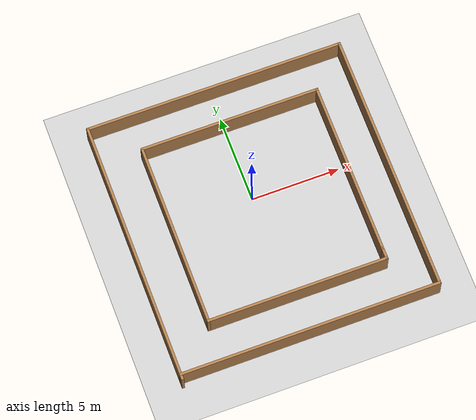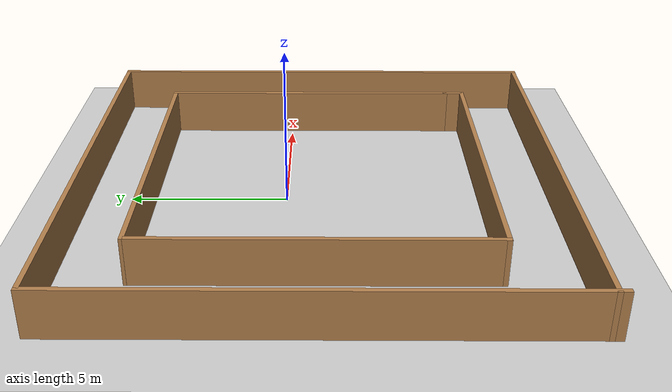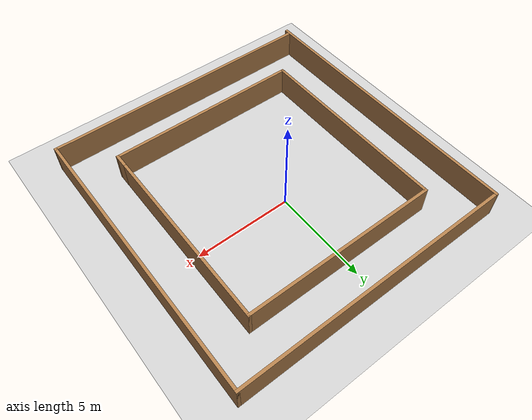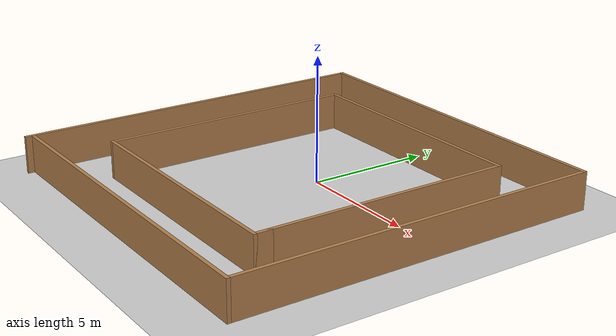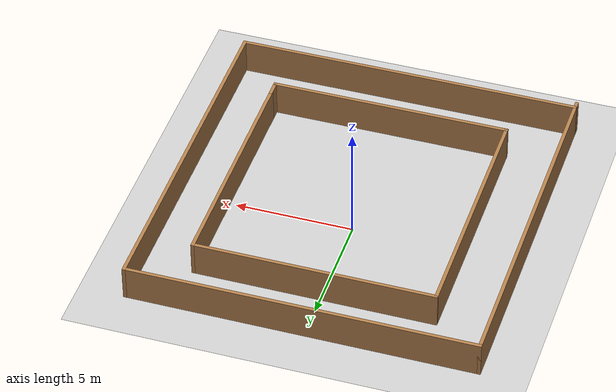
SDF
<sdf version="1.7">
 <world name="default">
  <light name="sun" type="directional">
   <pose>0 0 10 0 -0 0</pose>
   <diffuse>0.8 0.8 0.8 1</diffuse>
   <specular>0.2 0.2 0.2 1</specular>
   <attenuation>
    <range>1000</range>
    <constant>0.9</constant>
    <linear>0.01</linear>
    <quadratic>0.001</quadratic>
   </attenuation>
   <direction>-0.5 0.1 -0.9</direction>
   <spot><inner_angle>0</inner_angle><outer_angle>0</outer_angle><falloff>0</falloff></spot>
  </light>
  <model name="ground_plane">
   <static>1</static>
   <link name="link">
    <collision name="collision">
     <geometry><plane><normal>0 0 1</normal><size>100 100</size></plane></geometry>
     <surface><friction><ode><mu>100</mu><mu2>50</mu2></ode></friction></surface>
    </collision>
    <visual name="visual">
     <cast_shadows>0</cast_shadows>
     <geometry><plane><normal>0 0 1</normal><size>100 100</size></plane></geometry>
     <material>
      <script><uri>file://media/materials/scripts/gazebo.material</uri><name>Gazebo/Grey</name></script>
     </material>
    </visual>
   </link>
  </model>
  <gravity>0 0 -9.8</gravity>
  <magnetic_field>6e-06 2.3e-05 -4.2e-05</magnetic_field>
  <atmosphere type="adiabatic"/>
  <physics type="ode">
   <max_step_size>0.001</max_step_size>
   <real_time_factor>1</real_time_factor>
   <real_time_update_rate>1000</real_time_update_rate>
  </physics>
  <scene><ambient>0.4 0.4 0.4 1</ambient><background>0.7 0.7 0.7 1</background><shadows>1</shadows></scene>
  <audio><device>default</device></audio>
  <spherical_coordinates>
   <surface_model>EARTH_WGS84</surface_model>
   <latitude_deg>0</latitude_deg>
   <longitude_deg>0</longitude_deg>
   <elevation>0</elevation>
   <heading_deg>0</heading_deg>
  </spherical_coordinates>
  <model name="square">
   <model name="square">
    <pose>0.547548 -1.36286 0 0 -0 0</pose>
    <link name="Wall_21">
     <collision name="Wall_21_Collision">
      <geometry><box><size>15.25 0.15 1.5</size></box></geometry>
      <pose>0 0 0.75 0 -0 0</pose>
     </collision>
     <visual name="Wall_21_Visual">
      <pose>0 0 0.75 0 -0 0</pose>
      <geometry><box><size>15.25 0.15 1.5</size></box></geometry>
      <material>
       <script><uri>file://media/materials/scripts/gazebo.material</uri><name>Gazebo/Wood</name></script>
       <ambient>1 1 1 1</ambient>
      </material>
      <meta><layer>0</layer></meta>
     </visual>
     <pose>-7.3 0 0 0 -0 1.5708</pose>
    </link>
    <link name="Wall_22">
     <collision name="Wall_22_Collision">
      <geometry><box><size>14.75 0.15 1.5</size></box></geometry>
      <pose>0 0 0.75 0 -0 0</pose>
     </collision>
     <visual name="Wall_22_Visual">
      <pose>0 0 0.75 0 -0 0</pose>
      <geometry><box><size>14.75 0.15 1.5</size></box></geometry>
      <material>
       <script><uri>file://media/materials/scripts/gazebo.material</uri><name>Gazebo/Wood</name></script>
       <ambient>1 1 1 1</ambient>
      </material>
      <meta><layer>0</layer></meta>
     </visual>
     <pose>0 7.55 0 0 -0 0</pose>
    </link>
    <link name="Wall_23">
     <collision name="Wall_23_Collision">
      <geometry><box><size>15 0.15 1.5</size></box></geometry>
      <pose>0 0 0.75 0 -0 0</pose>
     </collision>
     <visual name="Wall_23_Visual">
      <pose>0 0 0.75 0 -0 0</pose>
      <geometry><box><size>15 0.15 1.5</size></box></geometry>
      <material>
       <script><uri>file://media/materials/scripts/gazebo.material</uri><name>Gazebo/Wood</name></script>
       <ambient>1 1 1 1</ambient>
      </material>
      <meta><layer>0</layer></meta>
     </visual>
     <pose>7.3 0.125 0 0 -0 -1.5708</pose>
    </link>
    <link name="Wall_24">
     <collision name="Wall_24_Collision">
      <geometry><box><size>14.75 0.15 1.5</size></box></geometry>
      <pose>0 0 0.75 0 -0 0</pose>
     </collision>
     <visual name="Wall_24_Visual">
      <pose>0 0 0.75 0 -0 0</pose>
      <geometry><box><size>14.75 0.15 1.5</size></box></geometry>
      <material>
       <script><uri>file://media/materials/scripts/gazebo.material</uri><name>Gazebo/Wood</name></script>
       <ambient>1 1 1 1</ambient>
      </material>
      <meta><layer>0</layer></meta>
     </visual>
     <pose>0 -7.3 0 0 -0 3.14159</pose>
    </link>
    <link name="Wall_26">
     <collision name="Wall_26_Collision">
      <geometry><box><size>10.25 0.15 1.5</size></box></geometry>
      <pose>0 0 0.75 0 -0 0</pose>
     </collision>
     <visual name="Wall_26_Visual">
      <pose>0 0 0.75 0 -0 0</pose>
      <geometry><box><size>10.25 0.15 1.5</size></box></geometry>
      <material>
       <script><uri>file://media/materials/scripts/gazebo.material</uri><name>Gazebo/Wood</name></script>
       <ambient>1 1 1 1</ambient>
      </material>
      <meta><layer>0</layer></meta>
     </visual>
     <pose>0.121 5.42 0 0 -0 0</pose>
    </link>
    <link name="Wall_27">
     <collision name="Wall_27_Collision">
      <geometry><box><size>10 0.15 1.5</size></box></geometry>
      <pose>0 0 0.75 0 -0 0</pose>
     </collision>
     <visual name="Wall_27_Visual">
      <pose>0 0 0.75 0 -0 0</pose>
      <geometry><box><size>10 0.15 1.5</size></box></geometry>
      <material>
       <script><uri>file://media/materials/scripts/gazebo.material</uri><name>Gazebo/Wood</name></script>
       <ambient>1 1 1 1</ambient>
      </material>
      <meta><layer>0</layer></meta>
     </visual>
     <pose>5.171 0.495 0 0 -0 -1.5708</pose>
    </link>
    <link name="Wall_28">
     <collision name="Wall_28_Collision">
      <geometry><box><size>0.75 0.15 1.5</size></box></geometry>
      <pose>0 0 0.75 0 -0 0</pose>
     </collision>
     <visual name="Wall_28_Visual">
      <pose>0 0 0.75 0 -0 0</pose>
      <geometry><box><size>0.75 0.15 1.5</size></box></geometry>
      <material>
       <script><uri>file://media/materials/scripts/gazebo.material</uri><name>Gazebo/Wood</name></script>
       <ambient>1 1 1 1</ambient>
      </material>
      <meta><layer>0</layer></meta>
     </visual>
     <pose>5.171 -4.73 0 0 -0 -1.5708</pose>
    </link>
    <link name="Wall_29">
     <collision name="Wall_29_Collision">
      <geometry><box><size>10.25 0.15 1.5</size></box></geometry>
      <pose>0 0 0.75 0 -0 0</pose>
     </collision>
     <visual name="Wall_29_Visual">
      <pose>0 0 0.75 0 -0 0</pose>
      <geometry><box><size>10.25 0.15 1.5</size></box></geometry>
      <material>
       <script><uri>file://media/materials/scripts/gazebo.material</uri><name>Gazebo/Wood</name></script>
       <ambient>1 1 1 1</ambient>
      </material>
      <meta><layer>0</layer></meta>
     </visual>
     <pose>0.121 -5.03 0 0 -0 3.14159</pose>
    </link>
    <link name="Wall_30">
     <collision name="Wall_30_Collision">
      <geometry><box><size>10.5 0.15 1.5</size></box></geometry>
      <pose>0 0 0.75 0 -0 0</pose>
     </collision>
     <visual name="Wall_30_Visual">
      <pose>0 0 0.75 0 -0 0</pose>
      <geometry><box><size>10.5 0.15 1.5</size></box></geometry>
      <material>
       <script><uri>file://media/materials/scripts/gazebo.material</uri><name>Gazebo/Wood</name></script>
       <ambient>1 1 1 1</ambient>
      </material>
      <meta><layer>0</layer></meta>
     </visual>
     <pose>-4.929 0.145 0 0 -0 1.5708</pose>
    </link>
    <static>1</static>
   </model>
   <static>1</static>
   <pose>-0.375 0.205 0 0 -0 0</pose>
  </model>
 </world>
</sdf>
